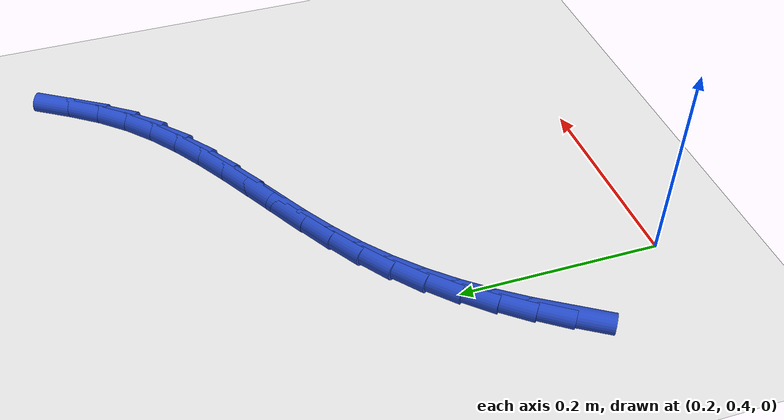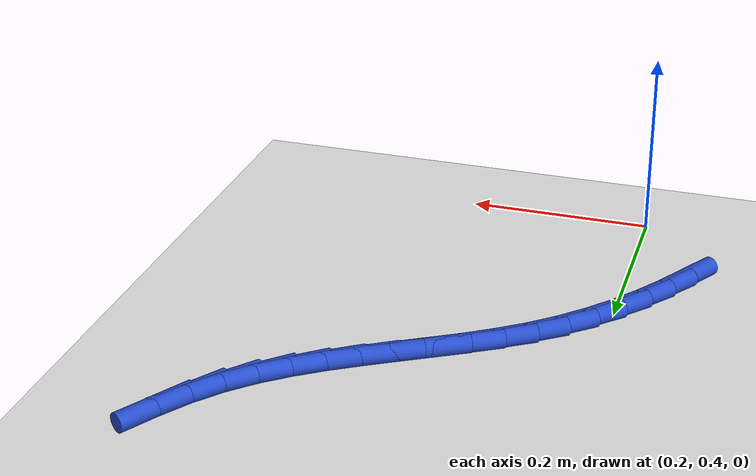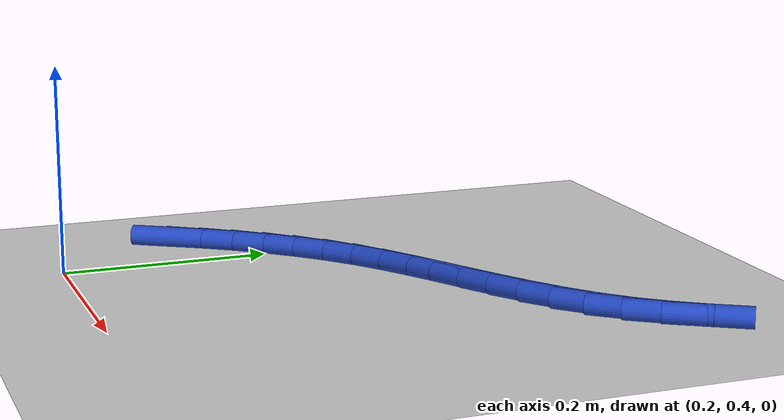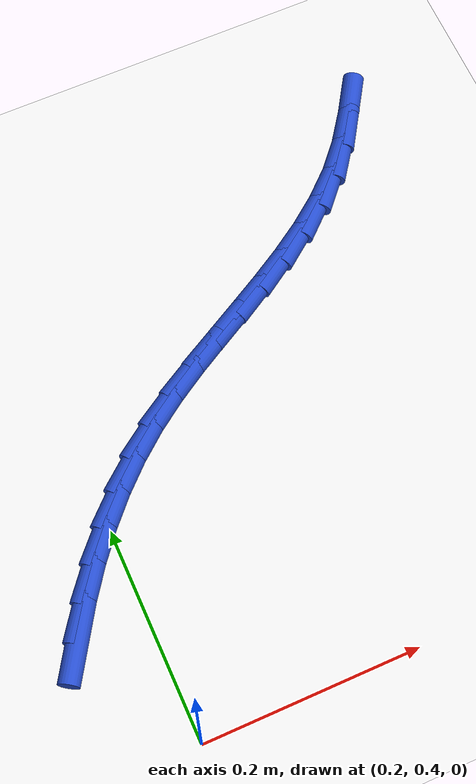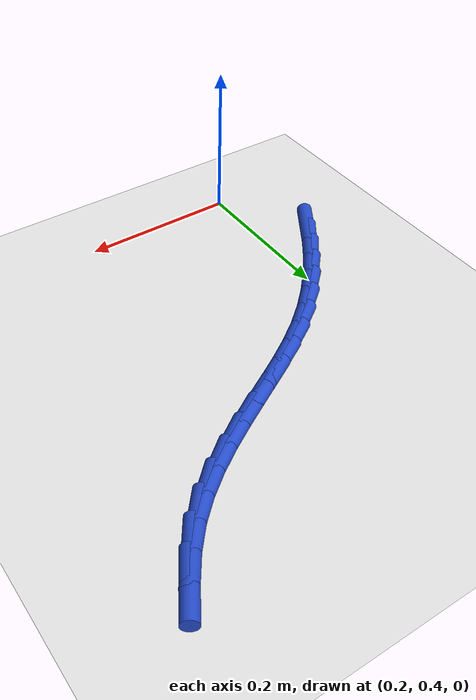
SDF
<sdf version="1.6">
 <world name="default">
  <model name="ground_plane">
   <static>1</static>
   <link name="link">
    <collision name="collision">
     <geometry><plane><normal>0 0 1</normal><size>100 100</size></plane></geometry>
     <surface><friction><ode><mu>100</mu><mu2>50</mu2></ode></friction></surface>
    </collision>
    <visual name="visual">
     <cast_shadows>0</cast_shadows>
     <geometry><plane><normal>0 0 1</normal><size>100 100</size></plane></geometry>
     <material>
      <script><uri>file://media/materials/scripts/gazebo.material</uri><name>Gazebo/WhiteGlow</name></script>
     </material>
    </visual>
   </link>
  </model>
  <model name="line">
   <link name="link_16">
    <pose>0.13877803014616272 0.5206656820733967 0.01 0 1.57 1.0050064140622634</pose>
    <collision name="collision">
     <geometry><cylinder><radius>0.01</radius><length>0.08</length></cylinder></geometry>
    </collision>
    <visual name="visual">
     <material>
      <script><name>Gazebo/Blue</name><uri>file://media/materials/scripts/gazebo.material</uri></script>
     </material>
     <geometry><cylinder><radius>0.01</radius><length>0.08</length></cylinder></geometry>
    </visual>
   </link>
   <link name="link_17">
    <pose>0.15704342792229883 0.549428061521772 0.01 0 1.57 0.9510199638044261</pose>
    <collision name="collision">
     <geometry><cylinder><radius>0.01</radius><length>0.08</length></cylinder></geometry>
    </collision>
    <visual name="visual">
     <material>
      <script><name>Gazebo/Blue</name><uri>file://media/materials/scripts/gazebo.material</uri></script>
     </material>
     <geometry><cylinder><radius>0.01</radius><length>0.08</length></cylinder></geometry>
    </visual>
   </link>
   <link name="link_18">
    <pose>0.17670433103256128 0.5769808781229604 0.01 0 1.57 0.892367557888876</pose>
    <collision name="collision">
     <geometry><cylinder><radius>0.01</radius><length>0.08</length></cylinder></geometry>
    </collision>
    <visual name="visual">
     <material>
      <script><name>Gazebo/Blue</name><uri>file://media/materials/scripts/gazebo.material</uri></script>
     </material>
     <geometry><cylinder><radius>0.01</radius><length>0.08</length></cylinder></geometry>
    </visual>
   </link>
   <link name="link_19">
    <pose>0.19781454133975457 0.6031700628421331 0.01 0 1.57 0.8288976806914573</pose>
    <collision name="collision">
     <geometry><cylinder><radius>0.01</radius><length>0.08</length></cylinder></geometry>
    </collision>
    <visual name="visual">
     <material>
      <script><name>Gazebo/Blue</name><uri>file://media/materials/scripts/gazebo.material</uri></script>
     </material>
     <geometry><cylinder><radius>0.01</radius><length>0.08</length></cylinder></geometry>
    </visual>
   </link>
   <link name="link_20">
    <pose>0.2204278607066831 0.6278415466444618 0.01 0 1.57 0.7605883763736955</pose>
    <collision name="collision">
     <geometry><cylinder><radius>0.01</radius><length>0.08</length></cylinder></geometry>
    </collision>
    <visual name="visual">
     <material>
      <script><name>Gazebo/Blue</name><uri>file://media/materials/scripts/gazebo.material</uri></script>
     </material>
     <geometry><cylinder><radius>0.01</radius><length>0.08</length></cylinder></geometry>
    </visual>
   </link>
   <link name="link_21">
    <pose>0.24459809099615137 0.6508412604951177 0.01 0 1.57 0.6875941634903682</pose>
    <collision name="collision">
     <geometry><cylinder><radius>0.01</radius><length>0.08</length></cylinder></geometry>
    </collision>
    <visual name="visual">
     <material>
      <script><name>Gazebo/Blue</name><uri>file://media/materials/scripts/gazebo.material</uri></script>
     </material>
     <geometry><cylinder><radius>0.01</radius><length>0.08</length></cylinder></geometry>
    </visual>
   </link>
   <link name="link_22">
    <pose>0.270379034070964 0.6720151353592723 0.01 0 1.57 0.6140575735623199</pose>
    <collision name="collision">
     <geometry><cylinder><radius>0.01</radius><length>0.08</length></cylinder></geometry>
    </collision>
    <visual name="visual">
     <material>
      <script><name>Gazebo/Blue</name><uri>file://media/materials/scripts/gazebo.material</uri></script>
     </material>
     <geometry><cylinder><radius>0.01</radius><length>0.08</length></cylinder></geometry>
    </visual>
   </link>
   <link name="link_23">
    <pose>0.29774999726390533 0.6913109998456569 0.01 0 1.57 0.5572851478003247</pose>
    <collision name="collision">
     <geometry><cylinder><radius>0.01</radius><length>0.08</length></cylinder></geometry>
    </collision>
    <visual name="visual">
     <material>
      <script><name>Gazebo/Blue</name><uri>file://media/materials/scripts/gazebo.material</uri></script>
     </material>
     <geometry><cylinder><radius>0.01</radius><length>0.08</length></cylinder></geometry>
    </visual>
   </link>
   <link name="link_24">
    <pose>0.3263542034783766 0.7091363970062295 0.01 0 1.57 0.5217100630254482</pose>
    <collision name="collision">
     <geometry><cylinder><radius>0.01</radius><length>0.08</length></cylinder></geometry>
    </collision>
    <visual name="visual">
     <material>
      <script><name>Gazebo/Blue</name><uri>file://media/materials/scripts/gazebo.material</uri></script>
     </material>
     <geometry><cylinder><radius>0.01</radius><length>0.08</length></cylinder></geometry>
    </visual>
   </link>
   <link name="link_25">
    <pose>0.35574014031911266 0.7260284539535958 0.01 0 1.57 0.5067610405855049</pose>
    <collision name="collision">
     <geometry><cylinder><radius>0.01</radius><length>0.08</length></cylinder></geometry>
    </collision>
    <visual name="visual">
     <material>
      <script><name>Gazebo/Blue</name><uri>file://media/materials/scripts/gazebo.material</uri></script>
     </material>
     <geometry><cylinder><radius>0.01</radius><length>0.08</length></cylinder></geometry>
    </visual>
   </link>
   <link name="link_26">
    <pose>0.3854562899696529 0.7425243052157658 0.01 0 1.57 0.5121245256947354</pose>
    <collision name="collision">
     <geometry><cylinder><radius>0.01</radius><length>0.08</length></cylinder></geometry>
    </collision>
    <visual name="visual">
     <material>
      <script><name>Gazebo/Blue</name><uri>file://media/materials/scripts/gazebo.material</uri></script>
     </material>
     <geometry><cylinder><radius>0.01</radius><length>0.08</length></cylinder></geometry>
    </visual>
   </link>
   <link name="link_27">
    <pose>0.4150511346135368 0.7591610853207491 0.01 0 1.57 0.5379235069611435</pose>
    <collision name="collision">
     <geometry><cylinder><radius>0.01</radius><length>0.08</length></cylinder></geometry>
    </collision>
    <visual name="visual">
     <material>
      <script><name>Gazebo/Blue</name><uri>file://media/materials/scripts/gazebo.material</uri></script>
     </material>
     <geometry><cylinder><radius>0.01</radius><length>0.08</length></cylinder></geometry>
    </visual>
   </link>
   <link name="link_28">
    <pose>0.4440731564343042 0.7764759287965562 0.01 0 1.57 0.5846550095025621</pose>
    <collision name="collision">
     <geometry><cylinder><radius>0.01</radius><length>0.08</length></cylinder></geometry>
    </collision>
    <visual name="visual">
     <material>
      <script><name>Gazebo/Blue</name><uri>file://media/materials/scripts/gazebo.material</uri></script>
     </material>
     <geometry><cylinder><radius>0.01</radius><length>0.08</length></cylinder></geometry>
    </visual>
   </link>
   <link name="link_29">
    <pose>0.47207083761549384 0.7950059701711959 0.01 0 1.57 0.652869945618082</pose>
    <collision name="collision">
     <geometry><cylinder><radius>0.01</radius><length>0.08</length></cylinder></geometry>
    </collision>
    <visual name="visual">
     <material>
      <script><name>Gazebo/Blue</name><uri>file://media/materials/scripts/gazebo.material</uri></script>
     </material>
     <geometry><cylinder><radius>0.01</radius><length>0.08</length></cylinder></geometry>
    </visual>
   </link>
   <link name="link_30">
    <pose>0.49859266034064603 0.8152883439726789 0.01 0 1.57 0.7425419754409928</pose>
    <collision name="collision">
     <geometry><cylinder><radius>0.01</radius><length>0.08</length></cylinder></geometry>
    </collision>
    <visual name="visual">
     <material>
      <script><name>Gazebo/Blue</name><uri>file://media/materials/scripts/gazebo.material</uri></script>
     </material>
     <geometry><cylinder><radius>0.01</radius><length>0.08</length></cylinder></geometry>
    </visual>
   </link>
   <link name="link_31">
    <pose>0.5231871067932996 0.8378601847290144 0.01 0 1.57 0.8516283300620486</pose>
    <collision name="collision">
     <geometry><cylinder><radius>0.01</radius><length>0.08</length></cylinder></geometry>
    </collision>
    <visual name="visual">
     <material>
      <script><name>Gazebo/Blue</name><uri>file://media/materials/scripts/gazebo.material</uri></script>
     </material>
     <geometry><cylinder><radius>0.01</radius><length>0.08</length></cylinder></geometry>
    </visual>
   </link>
   <link name="link_32">
    <pose>0.545413233699303 0.8632441548730079 0.01 0 1.57 0.9515475418994285</pose>
    <collision name="collision">
     <geometry><cylinder><radius>0.01</radius><length>0.08</length></cylinder></geometry>
    </collision>
    <visual name="visual">
     <material>
      <script><name>Gazebo/Blue</name><uri>file://media/materials/scripts/gazebo.material</uri></script>
     </material>
     <geometry><cylinder><radius>0.01</radius><length>0.08</length></cylinder></geometry>
    </visual>
   </link>
   <link name="link_33">
    <pose>0.5653632146085769 0.8912333044146656 0.01 0 1.57 1.007120830123098</pose>
    <collision name="collision">
     <geometry><cylinder><radius>0.01</radius><length>0.08</length></cylinder></geometry>
    </collision>
    <visual name="visual">
     <material>
      <script><name>Gazebo/Blue</name><uri>file://media/materials/scripts/gazebo.material</uri></script>
     </material>
     <geometry><cylinder><radius>0.01</radius><length>0.08</length></cylinder></geometry>
    </visual>
   </link>
  </model>
 </world>
</sdf>
